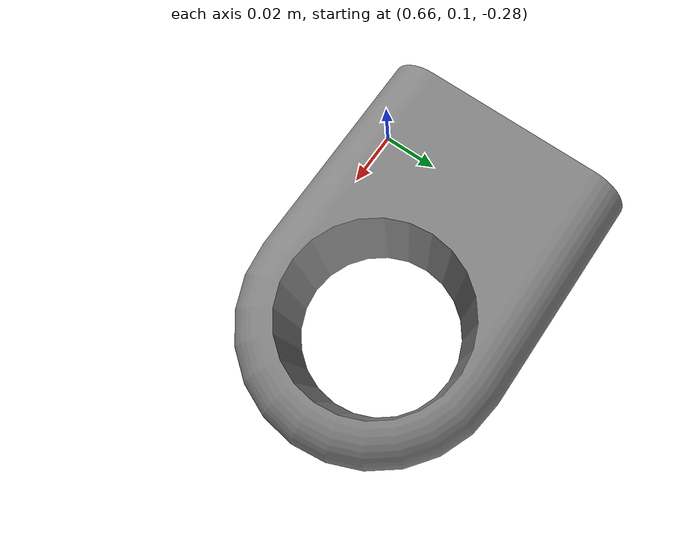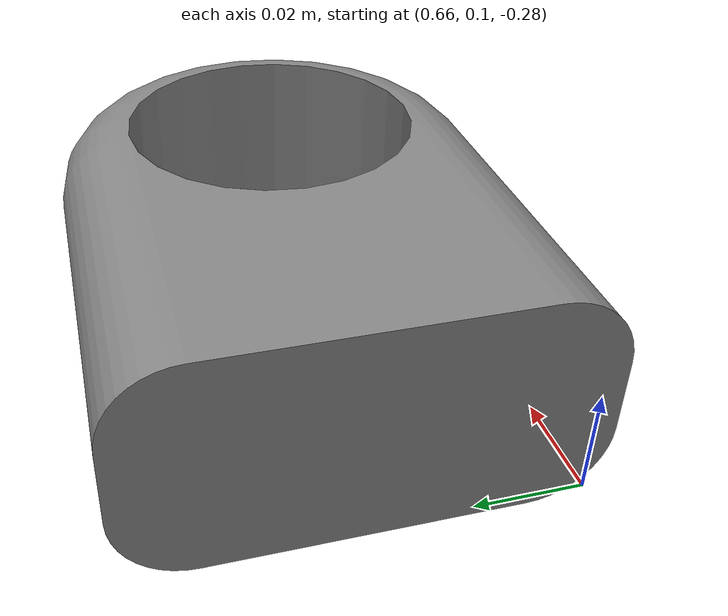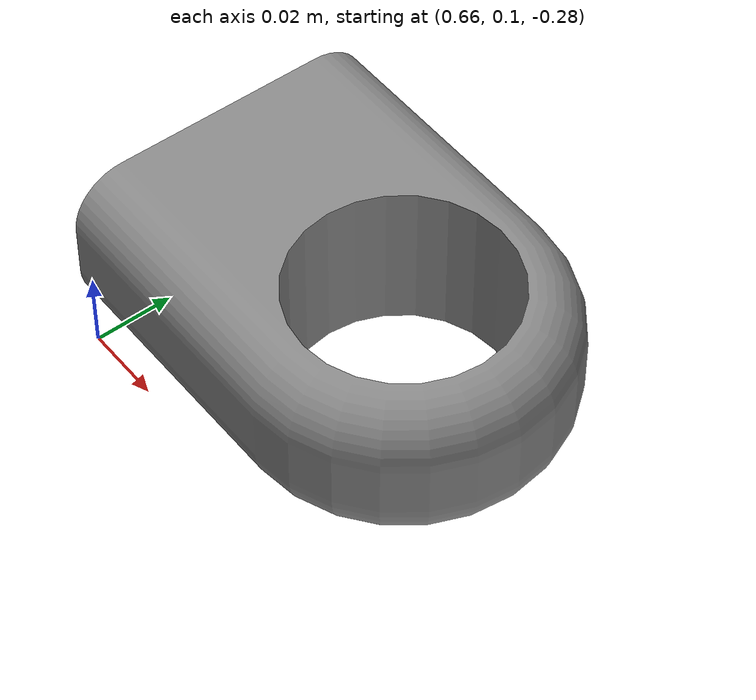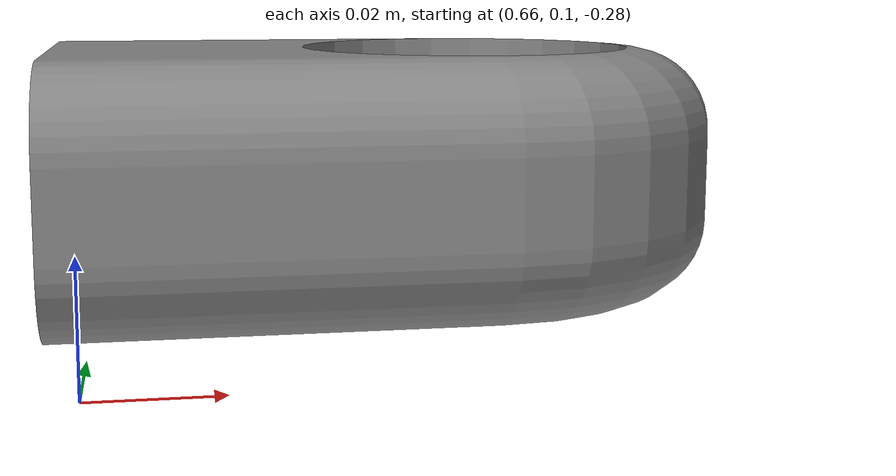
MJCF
<mujoco model="original-121">
  <default>
    <default class="visual">
      <geom group="2" type="mesh" contype="0" conaffinity="0"/>
    </default>
    <default class="collision">
      <geom group="3" type="mesh"/>
    </default>
  </default>
  <asset>
    <material name="material_0_0" specular="0.06666666666666667" shininess="0.03" rgba="0.5294117647058824 0.5294117647058824 0.5294117647058824 1"/>
    <mesh file="original-121.obj"/>
  </asset>
  <worldbody>
    <body name="original-121">
      <geom material="material_0_0" mesh="original-121" class="visual"/>
      <geom mesh="original-121" class="collision"/>
    </body>
  </worldbody>
</mujoco>
